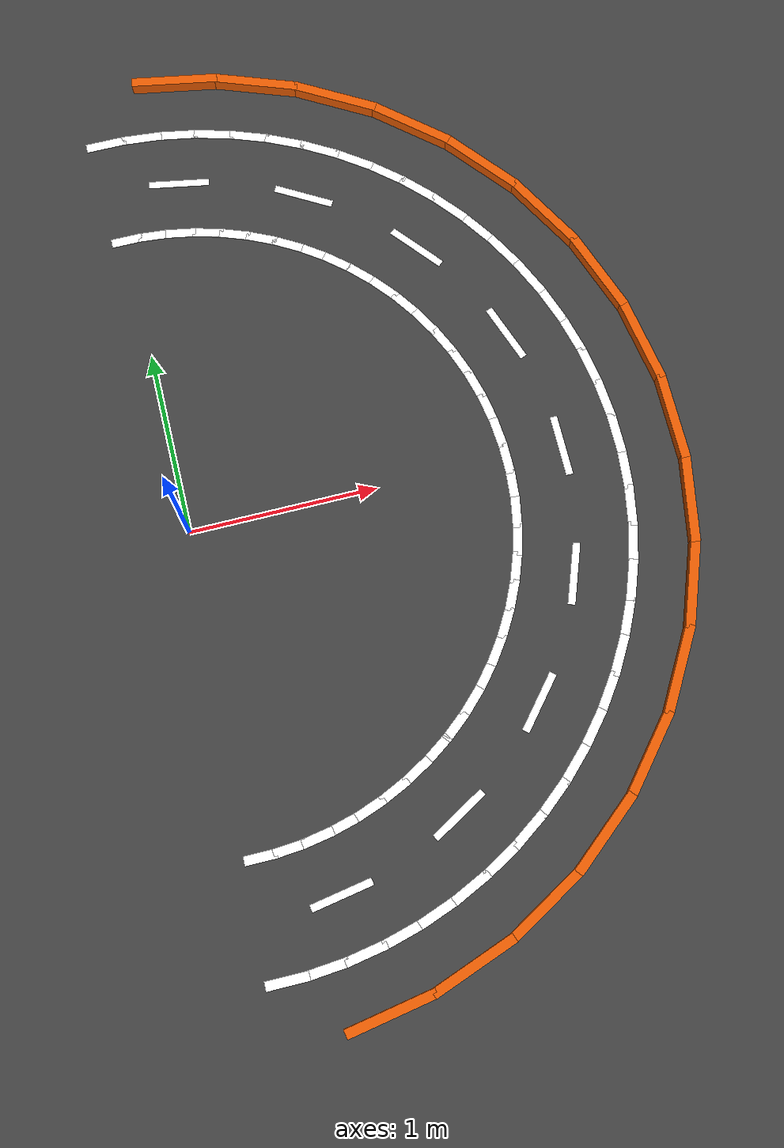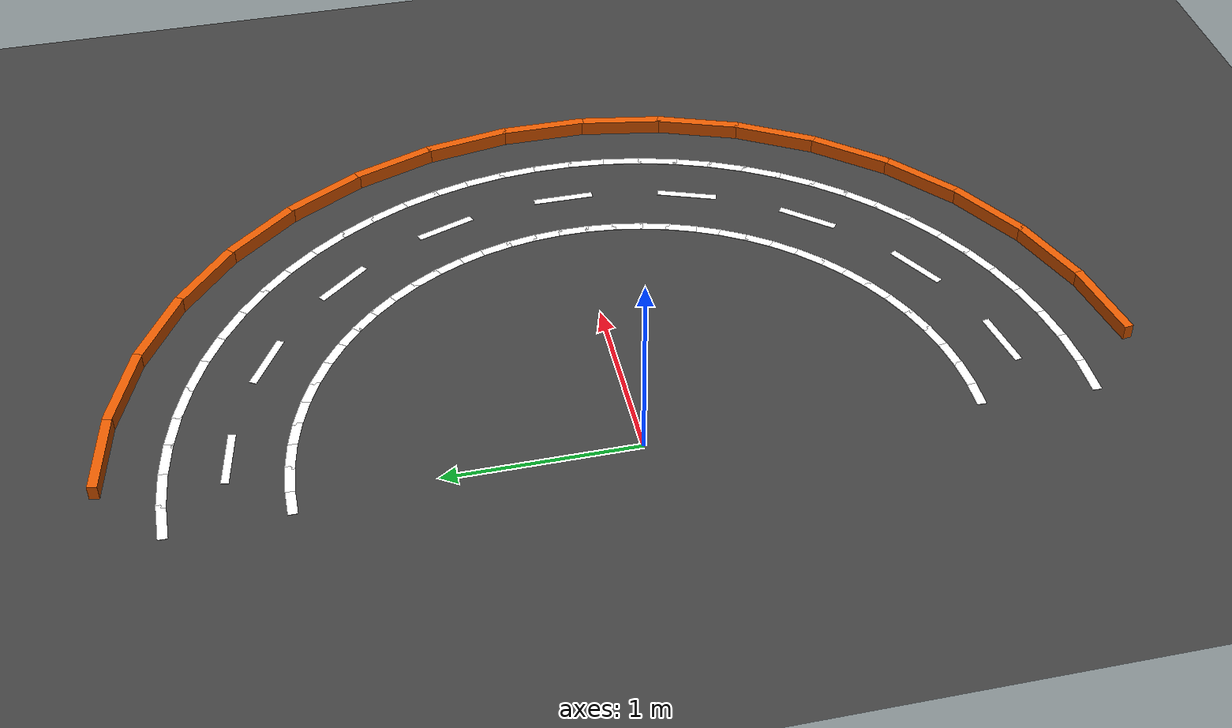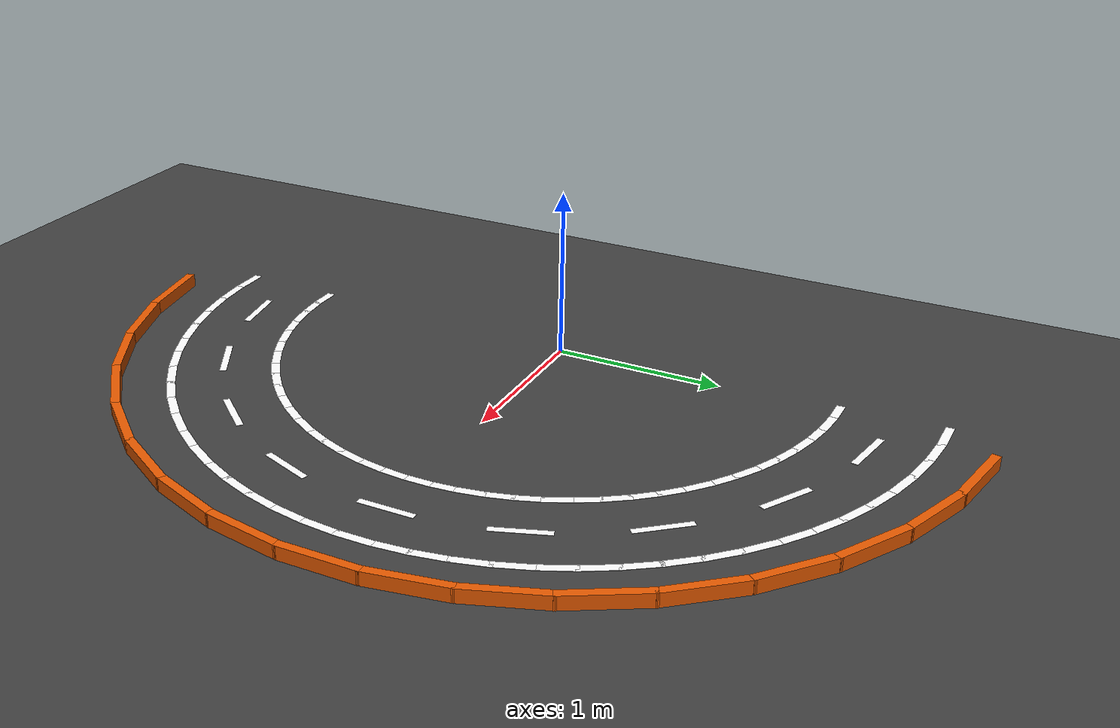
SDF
<sdf version="1.6">
 <world name="qcar_track">
  <model name="ground_plane">
   <static>true</static>
   <link name="link">
    <collision name="collision">
     <geometry><plane><normal>0 0 1</normal><size>100 100</size></plane></geometry>
    </collision>
    <visual name="visual">
     <geometry><plane><normal>0 0 1</normal><size>100 100</size></plane></geometry>
     <material>
      <ambient>0.25 0.25 0.25 1</ambient>
      <diffuse>0.25 0.25 0.25 1</diffuse>
      <specular>0.05 0.05 0.05 1</specular>
     </material>
    </visual>
   </link>
  </model>
  <model name="outer_00">
   <static>true</static>
   <pose>2.6000 0.0000 0.0400 0 0 0.0000</pose>
   <link name="link">
    <collision name="c"><geometry><box><size>0.05 0.477 0.08</size></box></geometry></collision>
    <visual name="v">
     <geometry><box><size>0.05 0.474 0.08</size></box></geometry>
     <material><ambient>0.9 0.35 0.0 1</ambient><diffuse>0.9 0.35 0.0 1</diffuse></material>
    </visual>
   </link>
  </model>
  <model name="outer_01">
   <static>true</static>
   <pose>2.5605 0.4515 0.0400 0 0 0.1745</pose>
   <link name="link">
    <collision name="c"><geometry><box><size>0.05 0.477 0.08</size></box></geometry></collision>
    <visual name="v">
     <geometry><box><size>0.05 0.474 0.08</size></box></geometry>
     <material><ambient>0.9 0.35 0.0 1</ambient><diffuse>0.9 0.35 0.0 1</diffuse></material>
    </visual>
   </link>
  </model>
  <model name="outer_02">
   <static>true</static>
   <pose>2.4432 0.8893 0.0400 0 0 0.3491</pose>
   <link name="link">
    <collision name="c"><geometry><box><size>0.05 0.477 0.08</size></box></geometry></collision>
    <visual name="v">
     <geometry><box><size>0.05 0.474 0.08</size></box></geometry>
     <material><ambient>0.9 0.35 0.0 1</ambient><diffuse>0.9 0.35 0.0 1</diffuse></material>
    </visual>
   </link>
  </model>
  <model name="outer_03">
   <static>true</static>
   <pose>2.2517 1.3000 0.0400 0 0 0.5236</pose>
   <link name="link">
    <collision name="c"><geometry><box><size>0.05 0.477 0.08</size></box></geometry></collision>
    <visual name="v">
     <geometry><box><size>0.05 0.474 0.08</size></box></geometry>
     <material><ambient>0.9 0.35 0.0 1</ambient><diffuse>0.9 0.35 0.0 1</diffuse></material>
    </visual>
   </link>
  </model>
  <model name="outer_04">
   <static>true</static>
   <pose>1.9917 1.6712 0.0400 0 0 0.6981</pose>
   <link name="link">
    <collision name="c"><geometry><box><size>0.05 0.477 0.08</size></box></geometry></collision>
    <visual name="v">
     <geometry><box><size>0.05 0.474 0.08</size></box></geometry>
     <material><ambient>0.9 0.35 0.0 1</ambient><diffuse>0.9 0.35 0.0 1</diffuse></material>
    </visual>
   </link>
  </model>
  <model name="outer_05">
   <static>true</static>
   <pose>1.6712 1.9917 0.0400 0 0 0.8727</pose>
   <link name="link">
    <collision name="c"><geometry><box><size>0.05 0.477 0.08</size></box></geometry></collision>
    <visual name="v">
     <geometry><box><size>0.05 0.474 0.08</size></box></geometry>
     <material><ambient>0.9 0.35 0.0 1</ambient><diffuse>0.9 0.35 0.0 1</diffuse></material>
    </visual>
   </link>
  </model>
  <model name="outer_06">
   <static>true</static>
   <pose>1.3000 2.2517 0.0400 0 0 1.0472</pose>
   <link name="link">
    <collision name="c"><geometry><box><size>0.05 0.477 0.08</size></box></geometry></collision>
    <visual name="v">
     <geometry><box><size>0.05 0.474 0.08</size></box></geometry>
     <material><ambient>0.9 0.35 0.0 1</ambient><diffuse>0.9 0.35 0.0 1</diffuse></material>
    </visual>
   </link>
  </model>
  <model name="outer_07">
   <static>true</static>
   <pose>0.8893 2.4432 0.0400 0 0 1.2217</pose>
   <link name="link">
    <collision name="c"><geometry><box><size>0.05 0.477 0.08</size></box></geometry></collision>
    <visual name="v">
     <geometry><box><size>0.05 0.474 0.08</size></box></geometry>
     <material><ambient>0.9 0.35 0.0 1</ambient><diffuse>0.9 0.35 0.0 1</diffuse></material>
    </visual>
   </link>
  </model>
  <model name="outer_08">
   <static>true</static>
   <pose>0.4515 2.5605 0.0400 0 0 1.3963</pose>
   <link name="link">
    <collision name="c"><geometry><box><size>0.05 0.477 0.08</size></box></geometry></collision>
    <visual name="v">
     <geometry><box><size>0.05 0.474 0.08</size></box></geometry>
     <material><ambient>0.9 0.35 0.0 1</ambient><diffuse>0.9 0.35 0.0 1</diffuse></material>
    </visual>
   </link>
  </model>
  <model name="outer_28">
   <static>true</static>
   <pose>0.4515 -2.5605 0.0400 0 0 4.8869</pose>
   <link name="link">
    <collision name="c"><geometry><box><size>0.05 0.477 0.08</size></box></geometry></collision>
    <visual name="v">
     <geometry><box><size>0.05 0.474 0.08</size></box></geometry>
     <material><ambient>0.9 0.35 0.0 1</ambient><diffuse>0.9 0.35 0.0 1</diffuse></material>
    </visual>
   </link>
  </model>
  <model name="outer_29">
   <static>true</static>
   <pose>0.8893 -2.4432 0.0400 0 0 5.0615</pose>
   <link name="link">
    <collision name="c"><geometry><box><size>0.05 0.477 0.08</size></box></geometry></collision>
    <visual name="v">
     <geometry><box><size>0.05 0.474 0.08</size></box></geometry>
     <material><ambient>0.9 0.35 0.0 1</ambient><diffuse>0.9 0.35 0.0 1</diffuse></material>
    </visual>
   </link>
  </model>
  <model name="outer_30">
   <static>true</static>
   <pose>1.3000 -2.2517 0.0400 0 0 5.2360</pose>
   <link name="link">
    <collision name="c"><geometry><box><size>0.05 0.477 0.08</size></box></geometry></collision>
    <visual name="v">
     <geometry><box><size>0.05 0.474 0.08</size></box></geometry>
     <material><ambient>0.9 0.35 0.0 1</ambient><diffuse>0.9 0.35 0.0 1</diffuse></material>
    </visual>
   </link>
  </model>
  <model name="outer_31">
   <static>true</static>
   <pose>1.6712 -1.9917 0.0400 0 0 5.4105</pose>
   <link name="link">
    <collision name="c"><geometry><box><size>0.05 0.477 0.08</size></box></geometry></collision>
    <visual name="v">
     <geometry><box><size>0.05 0.474 0.08</size></box></geometry>
     <material><ambient>0.9 0.35 0.0 1</ambient><diffuse>0.9 0.35 0.0 1</diffuse></material>
    </visual>
   </link>
  </model>
  <model name="outer_32">
   <static>true</static>
   <pose>1.9917 -1.6712 0.0400 0 0 5.5851</pose>
   <link name="link">
    <collision name="c"><geometry><box><size>0.05 0.477 0.08</size></box></geometry></collision>
    <visual name="v">
     <geometry><box><size>0.05 0.474 0.08</size></box></geometry>
     <material><ambient>0.9 0.35 0.0 1</ambient><diffuse>0.9 0.35 0.0 1</diffuse></material>
    </visual>
   </link>
  </model>
  <model name="outer_33">
   <static>true</static>
   <pose>2.2517 -1.3000 0.0400 0 0 5.7596</pose>
   <link name="link">
    <collision name="c"><geometry><box><size>0.05 0.477 0.08</size></box></geometry></collision>
    <visual name="v">
     <geometry><box><size>0.05 0.474 0.08</size></box></geometry>
     <material><ambient>0.9 0.35 0.0 1</ambient><diffuse>0.9 0.35 0.0 1</diffuse></material>
    </visual>
   </link>
  </model>
  <model name="outer_34">
   <static>true</static>
   <pose>2.4432 -0.8893 0.0400 0 0 5.9341</pose>
   <link name="link">
    <collision name="c"><geometry><box><size>0.05 0.477 0.08</size></box></geometry></collision>
    <visual name="v">
     <geometry><box><size>0.05 0.474 0.08</size></box></geometry>
     <material><ambient>0.9 0.35 0.0 1</ambient><diffuse>0.9 0.35 0.0 1</diffuse></material>
    </visual>
   </link>
  </model>
  <model name="outer_35">
   <static>true</static>
   <pose>2.5605 -0.4515 0.0400 0 0 6.1087</pose>
   <link name="link">
    <collision name="c"><geometry><box><size>0.05 0.477 0.08</size></box></geometry></collision>
    <visual name="v">
     <geometry><box><size>0.05 0.474 0.08</size></box></geometry>
     <material><ambient>0.9 0.35 0.0 1</ambient><diffuse>0.9 0.35 0.0 1</diffuse></material>
    </visual>
   </link>
  </model>
  <model name="left_line_00">
   <static>true</static>
   <pose>1.7000 0.0000 0.0020 0 0 0.0000</pose>
   <link name="link">
    <visual name="v">
     <geometry><box><size>0.05 0.168 0.002</size></box></geometry>
     <material><ambient>1 1 1 1</ambient><diffuse>1 1 1 1</diffuse></material>
    </visual>
   </link>
  </model>
  <model name="left_line_01">
   <static>true</static>
   <pose>1.6935 0.1482 0.0020 0 0 0.0873</pose>
   <link name="link">
    <visual name="v">
     <geometry><box><size>0.05 0.168 0.002</size></box></geometry>
     <material><ambient>1 1 1 1</ambient><diffuse>1 1 1 1</diffuse></material>
    </visual>
   </link>
  </model>
  <model name="left_line_02">
   <static>true</static>
   <pose>1.6742 0.2952 0.0020 0 0 0.1745</pose>
   <link name="link">
    <visual name="v">
     <geometry><box><size>0.05 0.168 0.002</size></box></geometry>
     <material><ambient>1 1 1 1</ambient><diffuse>1 1 1 1</diffuse></material>
    </visual>
   </link>
  </model>
  <model name="left_line_03">
   <static>true</static>
   <pose>1.6421 0.4400 0.0020 0 0 0.2618</pose>
   <link name="link">
    <visual name="v">
     <geometry><box><size>0.05 0.168 0.002</size></box></geometry>
     <material><ambient>1 1 1 1</ambient><diffuse>1 1 1 1</diffuse></material>
    </visual>
   </link>
  </model>
  <model name="left_line_04">
   <static>true</static>
   <pose>1.5975 0.5814 0.0020 0 0 0.3491</pose>
   <link name="link">
    <visual name="v">
     <geometry><box><size>0.05 0.168 0.002</size></box></geometry>
     <material><ambient>1 1 1 1</ambient><diffuse>1 1 1 1</diffuse></material>
    </visual>
   </link>
  </model>
  <model name="left_line_05">
   <static>true</static>
   <pose>1.5407 0.7185 0.0020 0 0 0.4363</pose>
   <link name="link">
    <visual name="v">
     <geometry><box><size>0.05 0.168 0.002</size></box></geometry>
     <material><ambient>1 1 1 1</ambient><diffuse>1 1 1 1</diffuse></material>
    </visual>
   </link>
  </model>
  <model name="left_line_06">
   <static>true</static>
   <pose>1.4722 0.8500 0.0020 0 0 0.5236</pose>
   <link name="link">
    <visual name="v">
     <geometry><box><size>0.05 0.168 0.002</size></box></geometry>
     <material><ambient>1 1 1 1</ambient><diffuse>1 1 1 1</diffuse></material>
    </visual>
   </link>
  </model>
  <model name="left_line_07">
   <static>true</static>
   <pose>1.3926 0.9751 0.0020 0 0 0.6109</pose>
   <link name="link">
    <visual name="v">
     <geometry><box><size>0.05 0.168 0.002</size></box></geometry>
     <material><ambient>1 1 1 1</ambient><diffuse>1 1 1 1</diffuse></material>
    </visual>
   </link>
  </model>
  <model name="left_line_08">
   <static>true</static>
   <pose>1.3023 1.0927 0.0020 0 0 0.6981</pose>
   <link name="link">
    <visual name="v">
     <geometry><box><size>0.05 0.168 0.002</size></box></geometry>
     <material><ambient>1 1 1 1</ambient><diffuse>1 1 1 1</diffuse></material>
    </visual>
   </link>
  </model>
  <model name="left_line_09">
   <static>true</static>
   <pose>1.2021 1.2021 0.0020 0 0 0.7854</pose>
   <link name="link">
    <visual name="v">
     <geometry><box><size>0.05 0.168 0.002</size></box></geometry>
     <material><ambient>1 1 1 1</ambient><diffuse>1 1 1 1</diffuse></material>
    </visual>
   </link>
  </model>
  <model name="left_line_10">
   <static>true</static>
   <pose>1.0927 1.3023 0.0020 0 0 0.8727</pose>
   <link name="link">
    <visual name="v">
     <geometry><box><size>0.05 0.168 0.002</size></box></geometry>
     <material><ambient>1 1 1 1</ambient><diffuse>1 1 1 1</diffuse></material>
    </visual>
   </link>
  </model>
  <model name="left_line_11">
   <static>true</static>
   <pose>0.9751 1.3926 0.0020 0 0 0.9599</pose>
   <link name="link">
    <visual name="v">
     <geometry><box><size>0.05 0.168 0.002</size></box></geometry>
     <material><ambient>1 1 1 1</ambient><diffuse>1 1 1 1</diffuse></material>
    </visual>
   </link>
  </model>
  <model name="left_line_12">
   <static>true</static>
   <pose>0.8500 1.4722 0.0020 0 0 1.0472</pose>
   <link name="link">
    <visual name="v">
     <geometry><box><size>0.05 0.168 0.002</size></box></geometry>
     <material><ambient>1 1 1 1</ambient><diffuse>1 1 1 1</diffuse></material>
    </visual>
   </link>
  </model>
  <model name="left_line_13">
   <static>true</static>
   <pose>0.7185 1.5407 0.0020 0 0 1.1345</pose>
   <link name="link">
    <visual name="v">
     <geometry><box><size>0.05 0.168 0.002</size></box></geometry>
     <material><ambient>1 1 1 1</ambient><diffuse>1 1 1 1</diffuse></material>
    </visual>
   </link>
  </model>
  <model name="left_line_14">
   <static>true</static>
   <pose>0.5814 1.5975 0.0020 0 0 1.2217</pose>
   <link name="link">
    <visual name="v">
     <geometry><box><size>0.05 0.168 0.002</size></box></geometry>
     <material><ambient>1 1 1 1</ambient><diffuse>1 1 1 1</diffuse></material>
    </visual>
   </link>
  </model>
  <model name="left_line_15">
   <static>true</static>
   <pose>0.4400 1.6421 0.0020 0 0 1.3090</pose>
   <link name="link">
    <visual name="v">
     <geometry><box><size>0.05 0.168 0.002</size></box></geometry>
     <material><ambient>1 1 1 1</ambient><diffuse>1 1 1 1</diffuse></material>
    </visual>
   </link>
  </model>
  <model name="left_line_16">
   <static>true</static>
   <pose>0.2952 1.6742 0.0020 0 0 1.3963</pose>
   <link name="link">
    <visual name="v">
     <geometry><box><size>0.05 0.168 0.002</size></box></geometry>
     <material><ambient>1 1 1 1</ambient><diffuse>1 1 1 1</diffuse></material>
    </visual>
   </link>
  </model>
  <model name="left_line_17">
   <static>true</static>
   <pose>0.1482 1.6935 0.0020 0 0 1.4835</pose>
   <link name="link">
    <visual name="v">
     <geometry><box><size>0.05 0.168 0.002</size></box></geometry>
     <material><ambient>1 1 1 1</ambient><diffuse>1 1 1 1</diffuse></material>
    </visual>
   </link>
  </model>
  <model name="left_line_18">
   <static>true</static>
   <pose>0.0000 1.7000 0.0020 0 0 1.5708</pose>
   <link name="link">
    <visual name="v">
     <geometry><box><size>0.05 0.168 0.002</size></box></geometry>
     <material><ambient>1 1 1 1</ambient><diffuse>1 1 1 1</diffuse></material>
    </visual>
   </link>
  </model>
  <model name="left_line_54">
   <static>true</static>
   <pose>-0.0000 -1.7000 0.0020 0 0 4.7124</pose>
   <link name="link">
    <visual name="v">
     <geometry><box><size>0.05 0.168 0.002</size></box></geometry>
     <material><ambient>1 1 1 1</ambient><diffuse>1 1 1 1</diffuse></material>
    </visual>
   </link>
  </model>
  <model name="left_line_55">
   <static>true</static>
   <pose>0.1482 -1.6935 0.0020 0 0 4.7997</pose>
   <link name="link">
    <visual name="v">
     <geometry><box><size>0.05 0.168 0.002</size></box></geometry>
     <material><ambient>1 1 1 1</ambient><diffuse>1 1 1 1</diffuse></material>
    </visual>
   </link>
  </model>
  <model name="left_line_56">
   <static>true</static>
   <pose>0.2952 -1.6742 0.0020 0 0 4.8869</pose>
   <link name="link">
    <visual name="v">
     <geometry><box><size>0.05 0.168 0.002</size></box></geometry>
     <material><ambient>1 1 1 1</ambient><diffuse>1 1 1 1</diffuse></material>
    </visual>
   </link>
  </model>
  <model name="left_line_57">
   <static>true</static>
   <pose>0.4400 -1.6421 0.0020 0 0 4.9742</pose>
   <link name="link">
    <visual name="v">
     <geometry><box><size>0.05 0.168 0.002</size></box></geometry>
     <material><ambient>1 1 1 1</ambient><diffuse>1 1 1 1</diffuse></material>
    </visual>
   </link>
  </model>
  <model name="left_line_58">
   <static>true</static>
   <pose>0.5814 -1.5975 0.0020 0 0 5.0615</pose>
   <link name="link">
    <visual name="v">
     <geometry><box><size>0.05 0.168 0.002</size></box></geometry>
     <material><ambient>1 1 1 1</ambient><diffuse>1 1 1 1</diffuse></material>
    </visual>
   </link>
  </model>
  <model name="left_line_59">
   <static>true</static>
   <pose>0.7185 -1.5407 0.0020 0 0 5.1487</pose>
   <link name="link">
    <visual name="v">
     <geometry><box><size>0.05 0.168 0.002</size></box></geometry>
     <material><ambient>1 1 1 1</ambient><diffuse>1 1 1 1</diffuse></material>
    </visual>
   </link>
  </model>
  <model name="left_line_60">
   <static>true</static>
   <pose>0.8500 -1.4722 0.0020 0 0 5.2360</pose>
   <link name="link">
    <visual name="v">
     <geometry><box><size>0.05 0.168 0.002</size></box></geometry>
     <material><ambient>1 1 1 1</ambient><diffuse>1 1 1 1</diffuse></material>
    </visual>
   </link>
  </model>
  <model name="left_line_61">
   <static>true</static>
   <pose>0.9751 -1.3926 0.0020 0 0 5.3233</pose>
   <link name="link">
    <visual name="v">
     <geometry><box><size>0.05 0.168 0.002</size></box></geometry>
     <material><ambient>1 1 1 1</ambient><diffuse>1 1 1 1</diffuse></material>
    </visual>
   </link>
  </model>
  <model name="left_line_62">
   <static>true</static>
   <pose>1.0927 -1.3023 0.0020 0 0 5.4105</pose>
   <link name="link">
    <visual name="v">
     <geometry><box><size>0.05 0.168 0.002</size></box></geometry>
     <material><ambient>1 1 1 1</ambient><diffuse>1 1 1 1</diffuse></material>
    </visual>
   </link>
  </model>
  <model name="left_line_63">
   <static>true</static>
   <pose>1.2021 -1.2021 0.0020 0 0 5.4978</pose>
   <link name="link">
    <visual name="v">
     <geometry><box><size>0.05 0.168 0.002</size></box></geometry>
     <material><ambient>1 1 1 1</ambient><diffuse>1 1 1 1</diffuse></material>
    </visual>
   </link>
  </model>
  <model name="left_line_64">
   <static>true</static>
   <pose>1.3023 -1.0927 0.0020 0 0 5.5851</pose>
   <link name="link">
    <visual name="v">
     <geometry><box><size>0.05 0.168 0.002</size></box></geometry>
     <material><ambient>1 1 1 1</ambient><diffuse>1 1 1 1</diffuse></material>
    </visual>
   </link>
  </model>
  <model name="left_line_65">
   <static>true</static>
   <pose>1.3926 -0.9751 0.0020 0 0 5.6723</pose>
   <link name="link">
    <visual name="v">
     <geometry><box><size>0.05 0.168 0.002</size></box></geometry>
     <material><ambient>1 1 1 1</ambient><diffuse>1 1 1 1</diffuse></material>
    </visual>
   </link>
  </model>
  <model name="left_line_66">
   <static>true</static>
   <pose>1.4722 -0.8500 0.0020 0 0 5.7596</pose>
   <link name="link">
    <visual name="v">
     <geometry><box><size>0.05 0.168 0.002</size></box></geometry>
     <material><ambient>1 1 1 1</ambient><diffuse>1 1 1 1</diffuse></material>
    </visual>
   </link>
  </model>
  <model name="left_line_67">
   <static>true</static>
   <pose>1.5407 -0.7185 0.0020 0 0 5.8469</pose>
   <link name="link">
    <visual name="v">
     <geometry><box><size>0.05 0.168 0.002</size></box></geometry>
     <material><ambient>1 1 1 1</ambient><diffuse>1 1 1 1</diffuse></material>
    </visual>
   </link>
  </model>
  <model name="left_line_68">
   <static>true</static>
   <pose>1.5975 -0.5814 0.0020 0 0 5.9341</pose>
   <link name="link">
    <visual name="v">
     <geometry><box><size>0.05 0.168 0.002</size></box></geometry>
     <material><ambient>1 1 1 1</ambient><diffuse>1 1 1 1</diffuse></material>
    </visual>
   </link>
  </model>
  <model name="left_line_69">
   <static>true</static>
   <pose>1.6421 -0.4400 0.0020 0 0 6.0214</pose>
   <link name="link">
    <visual name="v">
     <geometry><box><size>0.05 0.168 0.002</size></box></geometry>
     <material><ambient>1 1 1 1</ambient><diffuse>1 1 1 1</diffuse></material>
    </visual>
   </link>
  </model>
  <model name="left_line_70">
   <static>true</static>
   <pose>1.6742 -0.2952 0.0020 0 0 6.1087</pose>
   <link name="link">
    <visual name="v">
     <geometry><box><size>0.05 0.168 0.002</size></box></geometry>
     <material><ambient>1 1 1 1</ambient><diffuse>1 1 1 1</diffuse></material>
    </visual>
   </link>
  </model>
  <model name="left_line_71">
   <static>true</static>
   <pose>1.6935 -0.1482 0.0020 0 0 6.1959</pose>
   <link name="link">
    <visual name="v">
     <geometry><box><size>0.05 0.168 0.002</size></box></geometry>
     <material><ambient>1 1 1 1</ambient><diffuse>1 1 1 1</diffuse></material>
    </visual>
   </link>
  </model>
  <model name="right_line_00">
   <static>true</static>
   <pose>2.3000 0.0000 0.0020 0 0 0.0000</pose>
   <link name="link">
    <visual name="v">
     <geometry><box><size>0.05 0.221 0.002</size></box></geometry>
     <material><ambient>1 1 1 1</ambient><diffuse>1 1 1 1</diffuse></material>
    </visual>
   </link>
  </model>
  <model name="right_line_01">
   <static>true</static>
   <pose>2.2912 0.2005 0.0020 0 0 0.0873</pose>
   <link name="link">
    <visual name="v">
     <geometry><box><size>0.05 0.221 0.002</size></box></geometry>
     <material><ambient>1 1 1 1</ambient><diffuse>1 1 1 1</diffuse></material>
    </visual>
   </link>
  </model>
  <model name="right_line_02">
   <static>true</static>
   <pose>2.2651 0.3994 0.0020 0 0 0.1745</pose>
   <link name="link">
    <visual name="v">
     <geometry><box><size>0.05 0.221 0.002</size></box></geometry>
     <material><ambient>1 1 1 1</ambient><diffuse>1 1 1 1</diffuse></material>
    </visual>
   </link>
  </model>
  <model name="right_line_03">
   <static>true</static>
   <pose>2.2216 0.5953 0.0020 0 0 0.2618</pose>
   <link name="link">
    <visual name="v">
     <geometry><box><size>0.05 0.221 0.002</size></box></geometry>
     <material><ambient>1 1 1 1</ambient><diffuse>1 1 1 1</diffuse></material>
    </visual>
   </link>
  </model>
  <model name="right_line_04">
   <static>true</static>
   <pose>2.1613 0.7866 0.0020 0 0 0.3491</pose>
   <link name="link">
    <visual name="v">
     <geometry><box><size>0.05 0.221 0.002</size></box></geometry>
     <material><ambient>1 1 1 1</ambient><diffuse>1 1 1 1</diffuse></material>
    </visual>
   </link>
  </model>
  <model name="right_line_05">
   <static>true</static>
   <pose>2.0845 0.9720 0.0020 0 0 0.4363</pose>
   <link name="link">
    <visual name="v">
     <geometry><box><size>0.05 0.221 0.002</size></box></geometry>
     <material><ambient>1 1 1 1</ambient><diffuse>1 1 1 1</diffuse></material>
    </visual>
   </link>
  </model>
  <model name="right_line_06">
   <static>true</static>
   <pose>1.9919 1.1500 0.0020 0 0 0.5236</pose>
   <link name="link">
    <visual name="v">
     <geometry><box><size>0.05 0.221 0.002</size></box></geometry>
     <material><ambient>1 1 1 1</ambient><diffuse>1 1 1 1</diffuse></material>
    </visual>
   </link>
  </model>
  <model name="right_line_07">
   <static>true</static>
   <pose>1.8840 1.3192 0.0020 0 0 0.6109</pose>
   <link name="link">
    <visual name="v">
     <geometry><box><size>0.05 0.221 0.002</size></box></geometry>
     <material><ambient>1 1 1 1</ambient><diffuse>1 1 1 1</diffuse></material>
    </visual>
   </link>
  </model>
  <model name="right_line_08">
   <static>true</static>
   <pose>1.7619 1.4784 0.0020 0 0 0.6981</pose>
   <link name="link">
    <visual name="v">
     <geometry><box><size>0.05 0.221 0.002</size></box></geometry>
     <material><ambient>1 1 1 1</ambient><diffuse>1 1 1 1</diffuse></material>
    </visual>
   </link>
  </model>
  <model name="right_line_09">
   <static>true</static>
   <pose>1.6263 1.6263 0.0020 0 0 0.7854</pose>
   <link name="link">
    <visual name="v">
     <geometry><box><size>0.05 0.221 0.002</size></box></geometry>
     <material><ambient>1 1 1 1</ambient><diffuse>1 1 1 1</diffuse></material>
    </visual>
   </link>
  </model>
  <model name="right_line_10">
   <static>true</static>
   <pose>1.4784 1.7619 0.0020 0 0 0.8727</pose>
   <link name="link">
    <visual name="v">
     <geometry><box><size>0.05 0.221 0.002</size></box></geometry>
     <material><ambient>1 1 1 1</ambient><diffuse>1 1 1 1</diffuse></material>
    </visual>
   </link>
  </model>
  <model name="right_line_11">
   <static>true</static>
   <pose>1.3192 1.8840 0.0020 0 0 0.9599</pose>
   <link name="link">
    <visual name="v">
     <geometry><box><size>0.05 0.221 0.002</size></box></geometry>
     <material><ambient>1 1 1 1</ambient><diffuse>1 1 1 1</diffuse></material>
    </visual>
   </link>
  </model>
  <model name="right_line_12">
   <static>true</static>
   <pose>1.1500 1.9919 0.0020 0 0 1.0472</pose>
   <link name="link">
    <visual name="v">
     <geometry><box><size>0.05 0.221 0.002</size></box></geometry>
     <material><ambient>1 1 1 1</ambient><diffuse>1 1 1 1</diffuse></material>
    </visual>
   </link>
  </model>
  <model name="right_line_13">
   <static>true</static>
   <pose>0.9720 2.0845 0.0020 0 0 1.1345</pose>
   <link name="link">
    <visual name="v">
     <geometry><box><size>0.05 0.221 0.002</size></box></geometry>
     <material><ambient>1 1 1 1</ambient><diffuse>1 1 1 1</diffuse></material>
    </visual>
   </link>
  </model>
  <model name="right_line_14">
   <static>true</static>
   <pose>0.7866 2.1613 0.0020 0 0 1.2217</pose>
   <link name="link">
    <visual name="v">
     <geometry><box><size>0.05 0.221 0.002</size></box></geometry>
     <material><ambient>1 1 1 1</ambient><diffuse>1 1 1 1</diffuse></material>
    </visual>
   </link>
  </model>
  <model name="right_line_15">
   <static>true</static>
   <pose>0.5953 2.2216 0.0020 0 0 1.3090</pose>
   <link name="link">
    <visual name="v">
     <geometry><box><size>0.05 0.221 0.002</size></box></geometry>
     <material><ambient>1 1 1 1</ambient><diffuse>1 1 1 1</diffuse></material>
    </visual>
   </link>
  </model>
  <model name="right_line_16">
   <static>true</static>
   <pose>0.3994 2.2651 0.0020 0 0 1.3963</pose>
   <link name="link">
    <visual name="v">
     <geometry><box><size>0.05 0.221 0.002</size></box></geometry>
     <material><ambient>1 1 1 1</ambient><diffuse>1 1 1 1</diffuse></material>
    </visual>
   </link>
  </model>
  <model name="right_line_17">
   <static>true</static>
   <pose>0.2005 2.2912 0.0020 0 0 1.4835</pose>
   <link name="link">
    <visual name="v">
     <geometry><box><size>0.05 0.221 0.002</size></box></geometry>
     <material><ambient>1 1 1 1</ambient><diffuse>1 1 1 1</diffuse></material>
    </visual>
   </link>
  </model>
  <model name="right_line_18">
   <static>true</static>
   <pose>0.0000 2.3000 0.0020 0 0 1.5708</pose>
   <link name="link">
    <visual name="v">
     <geometry><box><size>0.05 0.221 0.002</size></box></geometry>
     <material><ambient>1 1 1 1</ambient><diffuse>1 1 1 1</diffuse></material>
    </visual>
   </link>
  </model>
  <model name="right_line_54">
   <static>true</static>
   <pose>-0.0000 -2.3000 0.0020 0 0 4.7124</pose>
   <link name="link">
    <visual name="v">
     <geometry><box><size>0.05 0.221 0.002</size></box></geometry>
     <material><ambient>1 1 1 1</ambient><diffuse>1 1 1 1</diffuse></material>
    </visual>
   </link>
  </model>
  <model name="right_line_55">
   <static>true</static>
   <pose>0.2005 -2.2912 0.0020 0 0 4.7997</pose>
   <link name="link">
    <visual name="v">
     <geometry><box><size>0.05 0.221 0.002</size></box></geometry>
     <material><ambient>1 1 1 1</ambient><diffuse>1 1 1 1</diffuse></material>
    </visual>
   </link>
  </model>
  <model name="right_line_56">
   <static>true</static>
   <pose>0.3994 -2.2651 0.0020 0 0 4.8869</pose>
   <link name="link">
    <visual name="v">
     <geometry><box><size>0.05 0.221 0.002</size></box></geometry>
     <material><ambient>1 1 1 1</ambient><diffuse>1 1 1 1</diffuse></material>
    </visual>
   </link>
  </model>
  <model name="right_line_57">
   <static>true</static>
   <pose>0.5953 -2.2216 0.0020 0 0 4.9742</pose>
   <link name="link">
    <visual name="v">
     <geometry><box><size>0.05 0.221 0.002</size></box></geometry>
     <material><ambient>1 1 1 1</ambient><diffuse>1 1 1 1</diffuse></material>
    </visual>
   </link>
  </model>
  <model name="right_line_58">
   <static>true</static>
   <pose>0.7866 -2.1613 0.0020 0 0 5.0615</pose>
   <link name="link">
    <visual name="v">
     <geometry><box><size>0.05 0.221 0.002</size></box></geometry>
     <material><ambient>1 1 1 1</ambient><diffuse>1 1 1 1</diffuse></material>
    </visual>
   </link>
  </model>
  <model name="right_line_59">
   <static>true</static>
   <pose>0.9720 -2.0845 0.0020 0 0 5.1487</pose>
   <link name="link">
    <visual name="v">
     <geometry><box><size>0.05 0.221 0.002</size></box></geometry>
     <material><ambient>1 1 1 1</ambient><diffuse>1 1 1 1</diffuse></material>
    </visual>
   </link>
  </model>
  <model name="right_line_60">
   <static>true</static>
   <pose>1.1500 -1.9919 0.0020 0 0 5.2360</pose>
   <link name="link">
    <visual name="v">
     <geometry><box><size>0.05 0.221 0.002</size></box></geometry>
     <material><ambient>1 1 1 1</ambient><diffuse>1 1 1 1</diffuse></material>
    </visual>
   </link>
  </model>
  <model name="right_line_61">
   <static>true</static>
   <pose>1.3192 -1.8840 0.0020 0 0 5.3233</pose>
   <link name="link">
    <visual name="v">
     <geometry><box><size>0.05 0.221 0.002</size></box></geometry>
     <material><ambient>1 1 1 1</ambient><diffuse>1 1 1 1</diffuse></material>
    </visual>
   </link>
  </model>
  <model name="right_line_62">
   <static>true</static>
   <pose>1.4784 -1.7619 0.0020 0 0 5.4105</pose>
   <link name="link">
    <visual name="v">
     <geometry><box><size>0.05 0.221 0.002</size></box></geometry>
     <material><ambient>1 1 1 1</ambient><diffuse>1 1 1 1</diffuse></material>
    </visual>
   </link>
  </model>
  <model name="right_line_63">
   <static>true</static>
   <pose>1.6263 -1.6263 0.0020 0 0 5.4978</pose>
   <link name="link">
    <visual name="v">
     <geometry><box><size>0.05 0.221 0.002</size></box></geometry>
     <material><ambient>1 1 1 1</ambient><diffuse>1 1 1 1</diffuse></material>
    </visual>
   </link>
  </model>
  <model name="right_line_64">
   <static>true</static>
   <pose>1.7619 -1.4784 0.0020 0 0 5.5851</pose>
   <link name="link">
    <visual name="v">
     <geometry><box><size>0.05 0.221 0.002</size></box></geometry>
     <material><ambient>1 1 1 1</ambient><diffuse>1 1 1 1</diffuse></material>
    </visual>
   </link>
  </model>
  <model name="right_line_65">
   <static>true</static>
   <pose>1.8840 -1.3192 0.0020 0 0 5.6723</pose>
   <link name="link">
    <visual name="v">
     <geometry><box><size>0.05 0.221 0.002</size></box></geometry>
     <material><ambient>1 1 1 1</ambient><diffuse>1 1 1 1</diffuse></material>
    </visual>
   </link>
  </model>
  <model name="right_line_66">
   <static>true</static>
   <pose>1.9919 -1.1500 0.0020 0 0 5.7596</pose>
   <link name="link">
    <visual name="v">
     <geometry><box><size>0.05 0.221 0.002</size></box></geometry>
     <material><ambient>1 1 1 1</ambient><diffuse>1 1 1 1</diffuse></material>
    </visual>
   </link>
  </model>
  <model name="right_line_67">
   <static>true</static>
   <pose>2.0845 -0.9720 0.0020 0 0 5.8469</pose>
   <link name="link">
    <visual name="v">
     <geometry><box><size>0.05 0.221 0.002</size></box></geometry>
     <material><ambient>1 1 1 1</ambient><diffuse>1 1 1 1</diffuse></material>
    </visual>
   </link>
  </model>
  <model name="right_line_68">
   <static>true</static>
   <pose>2.1613 -0.7866 0.0020 0 0 5.9341</pose>
   <link name="link">
    <visual name="v">
     <geometry><box><size>0.05 0.221 0.002</size></box></geometry>
     <material><ambient>1 1 1 1</ambient><diffuse>1 1 1 1</diffuse></material>
    </visual>
   </link>
  </model>
  <model name="right_line_69">
   <static>true</static>
   <pose>2.2216 -0.5953 0.0020 0 0 6.0214</pose>
   <link name="link">
    <visual name="v">
     <geometry><box><size>0.05 0.221 0.002</size></box></geometry>
     <material><ambient>1 1 1 1</ambient><diffuse>1 1 1 1</diffuse></material>
    </visual>
   </link>
  </model>
  <model name="right_line_70">
   <static>true</static>
   <pose>2.2651 -0.3994 0.0020 0 0 6.1087</pose>
   <link name="link">
    <visual name="v">
     <geometry><box><size>0.05 0.221 0.002</size></box></geometry>
     <material><ambient>1 1 1 1</ambient><diffuse>1 1 1 1</diffuse></material>
    </visual>
   </link>
  </model>
  <model name="right_line_71">
   <static>true</static>
   <pose>2.2912 -0.2005 0.0020 0 0 6.1959</pose>
   <link name="link">
    <visual name="v">
     <geometry><box><size>0.05 0.221 0.002</size></box></geometry>
     <material><ambient>1 1 1 1</ambient><diffuse>1 1 1 1</diffuse></material>
    </visual>
   </link>
  </model>
  <model name="center_dash_00">
   <static>true</static>
   <pose>2.0000 0.0000 0.0015 0 0 0.0000</pose>
   <link name="link">
    <visual name="v">
     <geometry><box><size>0.04 0.3300 0.002</size></box></geometry>
     <material><ambient>1 1 1 1</ambient><diffuse>1 1 1 1</diffuse></material>
    </visual>
   </link>
  </model>
  <model name="center_dash_01">
   <static>true</static>
   <pose>1.8794 0.6840 0.0015 0 0 0.3491</pose>
   <link name="link">
    <visual name="v">
     <geometry><box><size>0.04 0.3300 0.002</size></box></geometry>
     <material><ambient>1 1 1 1</ambient><diffuse>1 1 1 1</diffuse></material>
    </visual>
   </link>
  </model>
  <model name="center_dash_02">
   <static>true</static>
   <pose>1.5321 1.2856 0.0015 0 0 0.6981</pose>
   <link name="link">
    <visual name="v">
     <geometry><box><size>0.04 0.3300 0.002</size></box></geometry>
     <material><ambient>1 1 1 1</ambient><diffuse>1 1 1 1</diffuse></material>
    </visual>
   </link>
  </model>
  <model name="center_dash_03">
   <static>true</static>
   <pose>1.0000 1.7321 0.0015 0 0 1.0472</pose>
   <link name="link">
    <visual name="v">
     <geometry><box><size>0.04 0.3300 0.002</size></box></geometry>
     <material><ambient>1 1 1 1</ambient><diffuse>1 1 1 1</diffuse></material>
    </visual>
   </link>
  </model>
  <model name="center_dash_04">
   <static>true</static>
   <pose>0.3473 1.9696 0.0015 0 0 1.3963</pose>
   <link name="link">
    <visual name="v">
     <geometry><box><size>0.04 0.3300 0.002</size></box></geometry>
     <material><ambient>1 1 1 1</ambient><diffuse>1 1 1 1</diffuse></material>
    </visual>
   </link>
  </model>
  <model name="center_dash_14">
   <static>true</static>
   <pose>0.3473 -1.9696 0.0015 0 0 4.8869</pose>
   <link name="link">
    <visual name="v">
     <geometry><box><size>0.04 0.3300 0.002</size></box></geometry>
     <material><ambient>1 1 1 1</ambient><diffuse>1 1 1 1</diffuse></material>
    </visual>
   </link>
  </model>
  <model name="center_dash_15">
   <static>true</static>
   <pose>1.0000 -1.7321 0.0015 0 0 5.2360</pose>
   <link name="link">
    <visual name="v">
     <geometry><box><size>0.04 0.3300 0.002</size></box></geometry>
     <material><ambient>1 1 1 1</ambient><diffuse>1 1 1 1</diffuse></material>
    </visual>
   </link>
  </model>
  <model name="center_dash_16">
   <static>true</static>
   <pose>1.5321 -1.2856 0.0015 0 0 5.5851</pose>
   <link name="link">
    <visual name="v">
     <geometry><box><size>0.04 0.3300 0.002</size></box></geometry>
     <material><ambient>1 1 1 1</ambient><diffuse>1 1 1 1</diffuse></material>
    </visual>
   </link>
  </model>
  <model name="center_dash_17">
   <static>true</static>
   <pose>1.8794 -0.6840 0.0015 0 0 5.9341</pose>
   <link name="link">
    <visual name="v">
     <geometry><box><size>0.04 0.3300 0.002</size></box></geometry>
     <material><ambient>1 1 1 1</ambient><diffuse>1 1 1 1</diffuse></material>
    </visual>
   </link>
  </model>
 </world>
</sdf>
